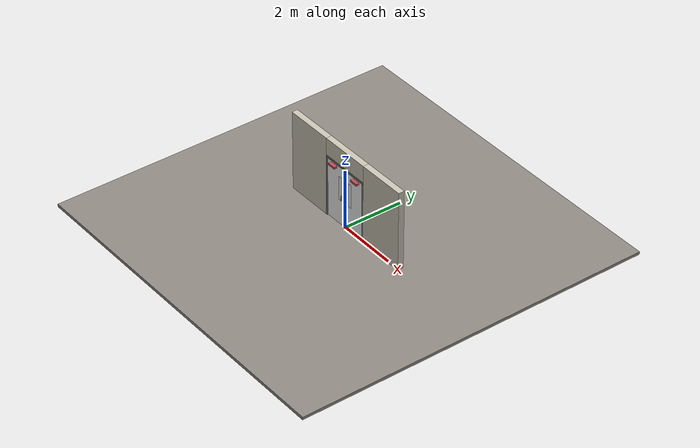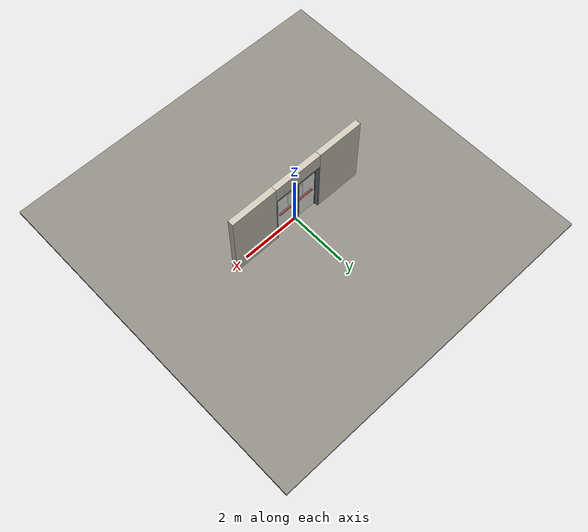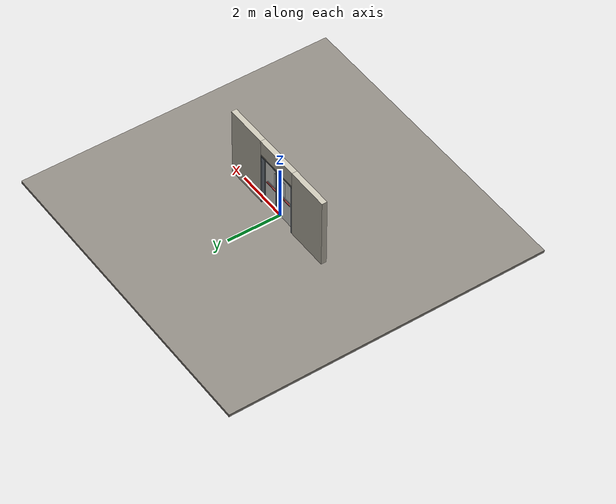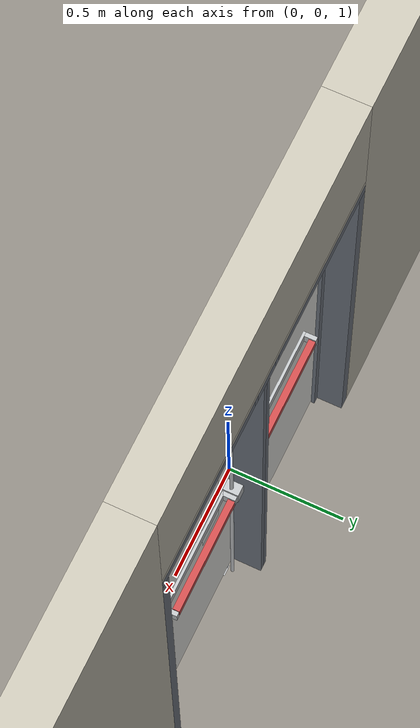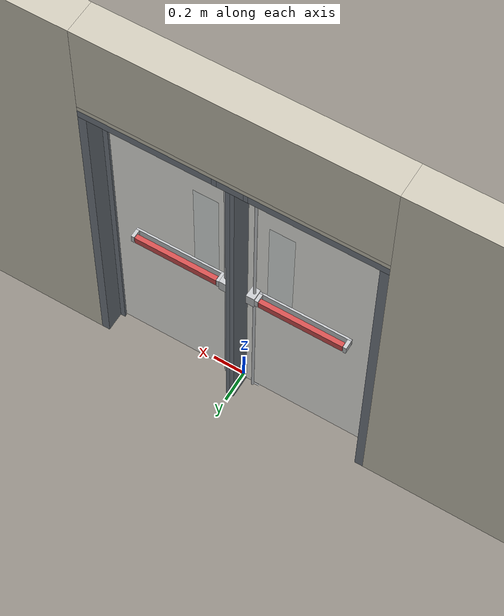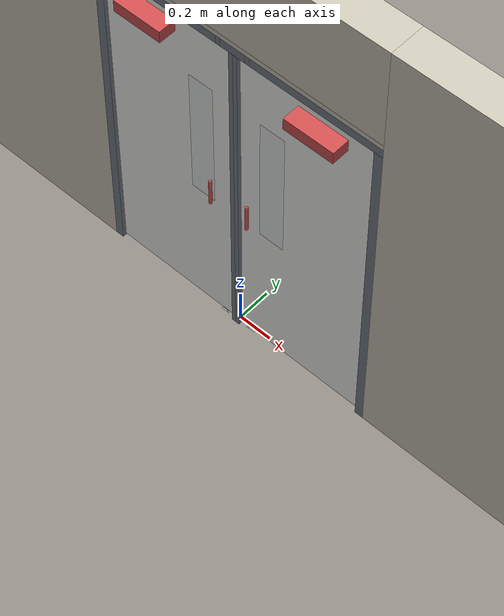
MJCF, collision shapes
<?xml version="1.0" ?>
<mujoco model="db0025_swing_double_full">
  <compiler angle="radian" meshdir="../../hardware" texturedir="../../textures" autolimits="true" inertiafromgeom="false"/>
  <option timestep="0.002" integrator="implicitfast" cone="elliptic" impratio="10" noslip_iterations="3">
    <flag multiccd="enable"/>
  </option>
  <size memory="16M"/>
  <default>
    <geom condim="4" solref="0.005 1" solimp="0.95 0.99 0.001"/>
    <joint solreflimit="0.005 1" solimplimit="0.95 0.99 0.001"/>
    <tendon solreflimit="0.005 1"/>
    <equality solref="0.002 1"/>
  </default>
  <visual>
    <headlight ambient="0.4 0.4 0.4" diffuse="0.7 0.7 0.7" specular="0.2 0.2 0.2"/>
    <quality shadowsize="4096"/>
    <map znear="0.01" zfar="60"/>
  </visual>
  <asset>
    <mesh name="closer_body_fdc4667657" file="closer_body_fdc4667657.obj"/>
    <mesh name="exit_sign_a6449bfa2c" file="exit_sign_a6449bfa2c.obj"/>
    <mesh name="hinge_e22b26c0c1" file="hinge_e22b26c0c1.obj"/>
    <mesh name="hinge_jamb_e1d088f8dc" file="hinge_jamb_e1d088f8dc.obj"/>
    <mesh name="pull_1e5d69a91a" file="pull_1e5d69a91a.obj"/>
    <mesh name="touchbar_pad_0373aa8b99" file="touchbar_pad_0373aa8b99.obj"/>
    <material name="mat_floor" rgba="0.55 0.53 0.5 1" specular="0.2" shininess="0.15" reflectance="0"/>
    <material name="mat_wall" rgba="0.78 0.76 0.7 1" specular="0.2" shininess="0.1" reflectance="0"/>
    <material name="mat_leaf_a" rgba="0.93 0.93 0.91 1" specular="0.23" shininess="0.58" reflectance="0.02"/>
    <material name="mat_glass" rgba="0.85 0.92 0.95 0.25" specular="0.2" shininess="0.95" reflectance="0.1"/>
    <material name="mat_hinge" rgba="0.65 0.66 0.68 1" specular="0.74" shininess="0.5" reflectance="0.36"/>
    <material name="mat_op_stainless" rgba="0.75 0.76 0.77 1" specular="0.8" shininess="0.65" reflectance="0.4"/>
    <material name="mat_bolt" rgba="0.75 0.76 0.77 1" specular="0.8" shininess="0.65" reflectance="0.4"/>
    <material name="mat_closer" rgba="0.22 0.17 0.13 1" specular="0.8" shininess="0.6" reflectance="0.4"/>
    <material name="mat_exit_sign" rgba="0.85 0.1 0.1 1" specular="0.2" shininess="0.6" reflectance="0"/>
    <material name="mat_sign_bracket" rgba="0.8 0.81 0.83 1" specular="0.8" shininess="0.6" reflectance="0.4"/>
    <material name="mat_leaf_b" rgba="0.93 0.93 0.91 1" specular="0.23" shininess="0.58" reflectance="0.02"/>
    <material name="mat_frame" rgba="0.45 0.48 0.52 1" specular="0.32" shininess="0.6" reflectance="0.08"/>
    <texture name="skybox" type="skybox" builtin="gradient" rgb1="0.6 0.7 0.85" rgb2="0.9 0.92 0.95" width="256" height="256"/>
  </asset>
  <worldbody>
    <light name="sun" pos="1.5 -2.5 4" dir="-0.3 0.5 -0.8" directional="true" diffuse="0.8 0.8 0.8" specular="0.3 0.3 0.3" castshadow="true"/>
    <light name="fill" pos="-1.5 2.5 3" dir="0.3 -0.5 -0.7" directional="true" diffuse="0.35 0.35 0.4" castshadow="false"/>
    <camera name="robot_view" pos="0 -2.484187 1.734312" xyaxes="1 0 0 0 0.26963 0.962964" fovy="52"/>
    <camera name="far_view" pos="0 2.600187 1.734312" xyaxes="-1 0 0 0 -0.26963 0.962964" fovy="52"/>
    <camera name="iso" pos="-1.932062 -2.077438 2.141063" xyaxes="0.741536 -0.670913 0 0.242917 0.268487 0.932151" fovy="46"/>
    <camera name="detail_handle" pos="0.062 -0.882 1.296" xyaxes="0.97561 0.219512 0 -0.070934 0.315262 0.94635" fovy="38"/>
    <geom name="floor" type="box" size="6 6 0.05" pos="0 0 -0.05" material="mat_floor" group="0" contype="1" conaffinity="1" friction="0.8 0.005 0.0001" density="2400"/>
    <geom name="wall_left" type="box" size="0.81625 0.1 1.35" pos="-1.68375 0.058 1.35" material="mat_wall" group="0" contype="1" conaffinity="1" friction="0.6 0.005 0.0001" density="800"/>
    <geom name="wall_right" type="box" size="0.81625 0.1 1.35" pos="1.68375 0.058 1.35" material="mat_wall" group="0" contype="1" conaffinity="1" friction="0.6 0.005 0.0001" density="800"/>
    <geom name="wall_header" type="box" size="0.8675 0.1 0.2875" pos="0 0.058 2.4125" material="mat_wall" group="0" contype="1" conaffinity="1" friction="0.6 0.005 0.0001" density="800"/>
    <geom name="hinge_0_jamb" type="mesh" mesh="hinge_jamb_e1d088f8dc" pos="-0.8145 -0.029 0.266" material="mat_hinge" group="1" contype="0" conaffinity="0" density="7850"/>
    <geom name="hinge_1_jamb" type="mesh" mesh="hinge_jamb_e1d088f8dc" pos="-0.8145 -0.029 1.0285" material="mat_hinge" group="1" contype="0" conaffinity="0" density="7850"/>
    <geom name="hinge_2_jamb" type="mesh" mesh="hinge_jamb_e1d088f8dc" pos="-0.8145 -0.029 1.861" material="mat_hinge" group="1" contype="0" conaffinity="0" density="7850"/>
    <geom name="leaf_a_bottom_strike_plate" type="box" size="0.0255 0.0255 0.00075" pos="-0.088 0 0.00075" material="mat_bolt" group="0" contype="1" conaffinity="1" friction="0.6 0.005 0.0001" density="7850"/>
    <geom name="leaf_a_bottom_strike_p" type="box" size="0.0215 0.004 0.00575" pos="-0.088 0.0145 0.00725" material="mat_bolt" group="0" contype="1" conaffinity="1" friction="0.6 0.005 0.0001" density="7850"/>
    <geom name="leaf_a_bottom_strike_n" type="box" size="0.0215 0.004 0.00575" pos="-0.088 -0.0145 0.00725" material="mat_bolt" group="0" contype="1" conaffinity="1" friction="0.6 0.005 0.0001" density="7850"/>
    <geom name="leaf_a_bottom_strike_e" type="box" size="0.004 0.0215 0.00575" pos="-0.0735 0 0.00725" material="mat_bolt" group="0" contype="1" conaffinity="1" friction="0.6 0.005 0.0001" density="7850"/>
    <geom name="exit_sign" type="mesh" mesh="exit_sign_a6449bfa2c" pos="0 0.15 2.345" material="mat_exit_sign" group="2" contype="0" conaffinity="0" density="500"/>
    <geom name="hinge_0_jamb_2" type="mesh" mesh="hinge_jamb_e1d088f8dc" pos="0.8145 -0.029 0.266" quat="0 0 1 0" material="mat_hinge" group="1" contype="0" conaffinity="0" density="7850"/>
    <geom name="hinge_1_jamb_2" type="mesh" mesh="hinge_jamb_e1d088f8dc" pos="0.8145 -0.029 1.0285" quat="0 0 1 0" material="mat_hinge" group="1" contype="0" conaffinity="0" density="7850"/>
    <geom name="hinge_2_jamb_2" type="mesh" mesh="hinge_jamb_e1d088f8dc" pos="0.8145 -0.029 1.861" quat="0 0 1 0" material="mat_hinge" group="1" contype="0" conaffinity="0" density="7850"/>
    <geom name="leaf_b_bottom_strike_plate" type="box" size="0.0255 0.0255 0.00075" pos="0.088 0 0.00075" material="mat_bolt" group="0" contype="1" conaffinity="1" friction="0.6 0.005 0.0001" density="7850"/>
    <geom name="leaf_b_bottom_strike_p" type="box" size="0.0215 0.004 0.00575" pos="0.088 0.0145 0.00725" material="mat_bolt" group="0" contype="1" conaffinity="1" friction="0.6 0.005 0.0001" density="7850"/>
    <geom name="leaf_b_bottom_strike_n" type="box" size="0.0215 0.004 0.00575" pos="0.088 -0.0145 0.00725" material="mat_bolt" group="0" contype="1" conaffinity="1" friction="0.6 0.005 0.0001" density="7850"/>
    <geom name="leaf_b_bottom_strike_e" type="box" size="0.004 0.0215 0.00575" pos="0.0735 0 0.00725" material="mat_bolt" group="0" contype="1" conaffinity="1" friction="0.6 0.005 0.0001" density="7850"/>
    <geom name="jamb_l" type="box" size="0.025 0.1 1.0225" pos="-0.8425 0.058 1.0225" material="mat_frame" group="0" contype="1" conaffinity="1" friction="0.6 0.005 0.0001" density="300"/>
    <geom name="jamb_r" type="box" size="0.025 0.1 1.0225" pos="0.8425 0.058 1.0225" material="mat_frame" group="0" contype="1" conaffinity="1" friction="0.6 0.005 0.0001" density="300"/>
    <geom name="jamb_head_pwall_-88_n" type="box" size="0.0135 0.0155 0.025" pos="-0.088 -0.0265 2.07" material="mat_frame" group="0" contype="1" conaffinity="1" friction="0.6 0.005 0.0001" density="300"/>
    <geom name="jamb_head_pwall_-88_p" type="box" size="0.0135 0.0735 0.025" pos="-0.088 0.0845 2.07" material="mat_frame" group="0" contype="1" conaffinity="1" friction="0.6 0.005 0.0001" density="300"/>
    <geom name="jamb_head_pback_-88" type="box" size="0.0135 0.011 0.0135" pos="-0.088 0 2.0815" material="mat_frame" group="0" contype="1" conaffinity="1" friction="0.6 0.005 0.0001" density="300"/>
    <geom name="jamb_head_pwall_88_n" type="box" size="0.0135 0.0155 0.025" pos="0.088 -0.0265 2.07" material="mat_frame" group="0" contype="1" conaffinity="1" friction="0.6 0.005 0.0001" density="300"/>
    <geom name="jamb_head_pwall_88_p" type="box" size="0.0135 0.0735 0.025" pos="0.088 0.0845 2.07" material="mat_frame" group="0" contype="1" conaffinity="1" friction="0.6 0.005 0.0001" density="300"/>
    <geom name="jamb_head_pback_88" type="box" size="0.0135 0.011 0.0135" pos="0.088 0 2.0815" material="mat_frame" group="0" contype="1" conaffinity="1" friction="0.6 0.005 0.0001" density="300"/>
    <geom name="jamb_head_0" type="box" size="0.383 0.1 0.025" pos="-0.4845 0.058 2.07" material="mat_frame" group="0" contype="1" conaffinity="1" friction="0.6 0.005 0.0001" density="300"/>
    <geom name="jamb_head_1" type="box" size="0.0745 0.1 0.025" pos="0 0.058 2.07" material="mat_frame" group="0" contype="1" conaffinity="1" friction="0.6 0.005 0.0001" density="300"/>
    <geom name="jamb_head_2" type="box" size="0.383 0.1 0.025" pos="0.4845 0.058 2.07" material="mat_frame" group="0" contype="1" conaffinity="1" friction="0.6 0.005 0.0001" density="300"/>
    <geom name="head_stud" type="box" size="0.8675 0.1 0.015" pos="0 0.058 2.11" material="mat_wall" group="0" contype="1" conaffinity="1" friction="0.6 0.005 0.0001" density="500"/>
    <geom name="stop_l" type="box" size="0.015 0.008 1.0225" pos="-0.8025 0.0305 1.0225" material="mat_frame" group="0" contype="1" conaffinity="1" friction="0.6 0.005 0.0001" density="300"/>
    <geom name="stop_r" type="box" size="0.015 0.008 1.0225" pos="0.8025 0.0305 1.0225" material="mat_frame" group="0" contype="1" conaffinity="1" friction="0.6 0.005 0.0001" density="300"/>
    <geom name="stop_head" type="box" size="0.8175 0.008 0.015" pos="0 0.0305 2.03" material="mat_frame" group="0" contype="1" conaffinity="1" friction="0.6 0.005 0.0001" density="300"/>
    <geom name="mullion_a_seg" type="box" size="0.0125 0.1 1.0225" pos="-0.0125 0.058 1.0225" material="mat_frame" group="0" contype="1" conaffinity="1" friction="0.6 0.005 0.0001" density="300"/>
    <geom name="mullion_b_seg" type="box" size="0.0125 0.1 1.0225" pos="0.0125 0.058 1.0225" material="mat_frame" group="0" contype="1" conaffinity="1" friction="0.6 0.005 0.0001" density="300"/>
    <site name="approach_point" pos="0 -1.5 0" quat="1 0 0 0" size="0.05" rgba="0.2 0.9 0.2 0.5" group="4"/>
    <site name="goal_point" pos="0 1.5 0" quat="1 0 0 0" size="0.05" rgba="0.2 0.9 0.2 0.5" group="4"/>
    <site name="door_plane_center" pos="0 0 1.0225" quat="1 0 0 0" size="0.02" rgba="0.2 0.9 0.2 0.5" group="4"/>
    <site name="approach_point_2" pos="0 -1.5 0" quat="1 0 0 0" size="0.05" rgba="0.2 0.9 0.2 0.5" group="4"/>
    <site name="goal_point_2" pos="0 1.5 0" quat="1 0 0 0" size="0.05" rgba="0.2 0.9 0.2 0.5" group="4"/>
    <site name="door_plane_center_2" pos="0 0 1.0225" quat="1 0 0 0" size="0.02" rgba="0.2 0.9 0.2 0.5" group="4"/>
    <site name="approach_point_3" pos="0 -1.5 0" quat="1 0 0 0" size="0.05" rgba="0.2 0.9 0.2 0.5" group="4"/>
    <site name="goal_point_3" pos="0 1.5 0" quat="1 0 0 0" size="0.05" rgba="0.2 0.9 0.2 0.5" group="4"/>
    <site name="door_plane_center_3" pos="0 0 1.0225" quat="1 0 0 0" size="0.02" rgba="0.2 0.9 0.2 0.5" group="4"/>
    <body name="leaf_a" pos="-0.8175 0 0">
      <inertial pos="0.391894 -0.014709 1.259749" mass="42.451314" quat="0.503295 -0.465048 -0.517983 -0.511974" diaginertia="2.026999831 17.085938039 19.015863877"/>
      <joint name="leaf_a_hinge" type="hinge" axis="0 0 -1" pos="0.003 -0.029 0" limited="true" range="0 1.919862" damping="12.160326" frictionloss="0.699991" stiffness="12.140339" springref="-1.719886" armature="0.02"/>
      <geom name="leaf_a_slab" type="box" size="0.39325 0.022 1.0125" pos="0.39625 0 1.0285" material="mat_leaf_a" group="0" contype="1" conaffinity="1" friction="0.4 0.005 0.0001" density="1"/>
      <geom name="leaf_a_glass_0" type="box" size="0.075 0.0228 0.405" pos="0.5945 0 1.2715" material="mat_glass" group="1" contype="0" conaffinity="0" density="1"/>
      <geom name="hinge_0" type="mesh" mesh="hinge_e22b26c0c1" pos="0.003 -0.029 0.266" material="mat_hinge" group="1" contype="0" conaffinity="0" density="7850"/>
      <geom name="hinge_1" type="mesh" mesh="hinge_e22b26c0c1" pos="0.003 -0.029 1.0285" material="mat_hinge" group="1" contype="0" conaffinity="0" density="7850"/>
      <geom name="hinge_2" type="mesh" mesh="hinge_e22b26c0c1" pos="0.003 -0.029 1.861" material="mat_hinge" group="1" contype="0" conaffinity="0" density="7850"/>
      <geom name="leaf_a_exit_device_rail" type="box" size="0.275613 0.006 0.025" pos="0.433887 0.028 1.016" material="mat_op_stainless" group="0" contype="1" conaffinity="1" friction="0.6 0.005 0.0001" density="3000"/>
      <geom name="leaf_a_exit_device_rail_end_n" type="box" size="0.01 0.0325 0.025" pos="0.168275 0.0545 1.016" material="mat_op_stainless" group="0" contype="1" conaffinity="1" friction="0.6 0.005 0.0001" density="3000"/>
      <geom name="leaf_a_exit_device_rail_end_p" type="box" size="0.01 0.0325 0.025" pos="0.6995 0.0545 1.016" material="mat_op_stainless" group="0" contype="1" conaffinity="1" friction="0.6 0.005 0.0001" density="3000"/>
      <geom name="leaf_a_exit_device_case" type="box" size="0.025 0.034125 0.0375" pos="0.7345 0.056125 1.016" material="mat_op_stainless" group="0" contype="1" conaffinity="1" friction="0.6 0.005 0.0001" density="3000"/>
      <geom name="leaf_a_exit_device_rod_top" type="cylinder" size="0.008 0.47875" pos="0.7295 0.052 1.53225" material="mat_op_stainless" group="1" contype="0" conaffinity="0" density="7850"/>
      <geom name="leaf_a_exit_device_rod_bot" type="cylinder" size="0.008 0.46625" pos="0.7295 0.052 0.51225" material="mat_op_stainless" group="1" contype="0" conaffinity="0" density="7850"/>
      <geom name="leaf_a_far_pull_n" type="mesh" mesh="pull_1e5d69a91a" pos="0.6995 -0.022 1.016" quat="0.707107 0.707107 0 0" material="mat_op_stainless" group="1" contype="0" conaffinity="0" density="3000"/>
      <geom name="leaf_a_far_pull_col_n" type="capsule" size="0.0095 0.08" pos="0.6995 -0.082 1.016" material="mat_op_stainless" group="3" contype="1" conaffinity="1" rgba="0.8 0.3 0.3 0.25" friction="0.7 0.01 0.0001" density="3000"/>
      <geom name="closer_body" type="mesh" mesh="closer_body_fdc4667657" pos="0.3 -0.022 1.945" quat="0.707107 0.707107 0 0" material="mat_closer" group="1" contype="0" conaffinity="0" density="2000"/>
      <geom name="closer_body_col" type="box" size="0.145 0.05 0.035" pos="0.3 -0.072 1.945" material="mat_closer" group="3" contype="1" conaffinity="1" rgba="0.8 0.3 0.3 0.25" friction="0.6 0.005 0.0001" density="2000"/>
      <site name="leaf_a_far_pull_grip_n" pos="0.6995 -0.082 1.016" quat="1 0 0 0" size="0.012" rgba="0.2 0.9 0.2 0.5" group="4"/>
      <site name="leaf_a_edge_mid" pos="0.7895 0 1.0125" quat="1 0 0 0" size="0.02" rgba="0.2 0.9 0.2 0.5" group="4"/>
      <body name="leaf_a_exit_device" pos="0.433887 0.022 1.016">
        <inertial pos="0 0.05 0" mass="4.092323" quat="0.707107 -0.707107 0 0" diaginertia="0.000997504 0.087354819 0.087738474"/>
        <joint name="leaf_a_exit_device_slide" type="slide" axis="0 -1 0" limited="true" range="0 0.016" damping="154.133079" frictionloss="0.5" stiffness="1400" springref="-0.015714" armature="0.15"/>
        <geom name="leaf_a_exit_device_pad" type="mesh" mesh="touchbar_pad_0373aa8b99" pos="0 0 0" quat="-0.707107 0.707107 0 0" material="mat_op_stainless" group="1" contype="0" conaffinity="0" density="3000"/>
        <geom name="leaf_a_exit_device_pad_col" type="box" size="0.252613 0.015 0.0225" pos="0 0.05 0" material="mat_op_stainless" group="3" contype="1" conaffinity="1" rgba="0.8 0.3 0.3 0.25" friction="0.8 0.01 0.0001" density="3000"/>
        <site name="leaf_a_exit_device_push" pos="0 0.065 0" quat="1 0 0 0" size="0.015" rgba="0.2 0.9 0.2 0.5" group="4"/>
      </body>
      <body name="leaf_a_top_latch" pos="0.7295 0 2.041">
        <inertial pos="0 0 -0.0155" mass="0.151026" quat="0.707107 0 0.707107 0" diaginertia="0.00000654 0.000053442 0.000053442"/>
        <joint name="leaf_a_top_latch_slide" type="slide" axis="0 0 -1" limited="true" range="0 0.019" damping="2" frictionloss="0.3" stiffness="800" springref="-0.01" armature="0.1"/>
        <geom name="leaf_a_top_latch_capsule" type="capsule" size="0.0095 0.025" pos="0 0 -0.0155" material="mat_bolt" group="0" contype="1" conaffinity="1" friction="0.2 0.005 0.0001" density="8500"/>
      </body>
      <body name="leaf_a_bottom_latch" pos="0.7295 0 0.03">
        <inertial pos="0 0 0.012" mass="0.167896" quat="0.707107 0 0.707107 0" diaginertia="0.000007301 0.000072388 0.000072388"/>
        <joint name="leaf_a_bottom_latch_slide" type="slide" axis="0 0 1" limited="true" range="0 0.026" damping="2" frictionloss="0.3" stiffness="800" springref="-0.01" armature="0.1"/>
        <geom name="leaf_a_bottom_latch_capsule" type="capsule" size="0.0095 0.0285" pos="0 0 0.012" material="mat_bolt" group="0" contype="1" conaffinity="1" friction="0.2 0.005 0.0001" density="8500"/>
      </body>
    </body>
    <body name="leaf_b" pos="0.8175 0 0">
      <inertial pos="-0.391894 -0.014709 1.259749" mass="42.451314" quat="0.511974 -0.517983 -0.465048 -0.503295" diaginertia="2.026999831 17.085938039 19.015863877"/>
      <joint name="leaf_b_hinge" type="hinge" axis="0 0 1" pos="-0.003 -0.029 0" limited="true" range="0 1.919862" damping="12.160326" frictionloss="0.699991" stiffness="12.140339" springref="-1.719886" armature="0.02"/>
      <geom name="leaf_b_slab" type="box" size="0.39325 0.022 1.0125" pos="-0.39625 0 1.0285" material="mat_leaf_b" group="0" contype="1" conaffinity="1" friction="0.4 0.005 0.0001" density="1"/>
      <geom name="leaf_b_glass_0" type="box" size="0.075 0.0228 0.405" pos="-0.5945 0 1.2715" material="mat_glass" group="1" contype="0" conaffinity="0" density="1"/>
      <geom name="hinge_0_2" type="mesh" mesh="hinge_e22b26c0c1" pos="-0.003 -0.029 0.266" quat="0 0 1 0" material="mat_hinge" group="1" contype="0" conaffinity="0" density="7850"/>
      <geom name="hinge_1_2" type="mesh" mesh="hinge_e22b26c0c1" pos="-0.003 -0.029 1.0285" quat="0 0 1 0" material="mat_hinge" group="1" contype="0" conaffinity="0" density="7850"/>
      <geom name="hinge_2_2" type="mesh" mesh="hinge_e22b26c0c1" pos="-0.003 -0.029 1.861" quat="0 0 1 0" material="mat_hinge" group="1" contype="0" conaffinity="0" density="7850"/>
      <geom name="leaf_b_exit_device_rail" type="box" size="0.275613 0.006 0.025" pos="-0.433887 0.028 1.016" material="mat_op_stainless" group="0" contype="1" conaffinity="1" friction="0.6 0.005 0.0001" density="3000"/>
      <geom name="leaf_b_exit_device_rail_end_n" type="box" size="0.01 0.0325 0.025" pos="-0.6995 0.0545 1.016" material="mat_op_stainless" group="0" contype="1" conaffinity="1" friction="0.6 0.005 0.0001" density="3000"/>
      <geom name="leaf_b_exit_device_rail_end_p" type="box" size="0.01 0.0325 0.025" pos="-0.168275 0.0545 1.016" material="mat_op_stainless" group="0" contype="1" conaffinity="1" friction="0.6 0.005 0.0001" density="3000"/>
      <geom name="leaf_b_exit_device_case" type="box" size="0.025 0.034125 0.0375" pos="-0.7345 0.056125 1.016" material="mat_op_stainless" group="0" contype="1" conaffinity="1" friction="0.6 0.005 0.0001" density="3000"/>
      <geom name="leaf_b_exit_device_rod_top" type="cylinder" size="0.008 0.47875" pos="-0.7295 0.052 1.53225" material="mat_op_stainless" group="1" contype="0" conaffinity="0" density="7850"/>
      <geom name="leaf_b_exit_device_rod_bot" type="cylinder" size="0.008 0.46625" pos="-0.7295 0.052 0.51225" material="mat_op_stainless" group="1" contype="0" conaffinity="0" density="7850"/>
      <geom name="leaf_b_far_pull_n" type="mesh" mesh="pull_1e5d69a91a" pos="-0.6995 -0.022 1.016" quat="0 0 -0.707107 0.707107" material="mat_op_stainless" group="1" contype="0" conaffinity="0" density="3000"/>
      <geom name="leaf_b_far_pull_col_n" type="capsule" size="0.0095 0.08" pos="-0.6995 -0.082 1.016" material="mat_op_stainless" group="3" contype="1" conaffinity="1" rgba="0.8 0.3 0.3 0.25" friction="0.7 0.01 0.0001" density="3000"/>
      <geom name="closer_body_2" type="mesh" mesh="closer_body_fdc4667657" pos="-0.3 -0.022 1.945" quat="0 0 -0.707107 0.707107" material="mat_closer" group="1" contype="0" conaffinity="0" density="2000"/>
      <geom name="closer_body_col_2" type="box" size="0.145 0.05 0.035" pos="-0.3 -0.072 1.945" material="mat_closer" group="3" contype="1" conaffinity="1" rgba="0.8 0.3 0.3 0.25" friction="0.6 0.005 0.0001" density="2000"/>
      <site name="leaf_b_far_pull_grip_n" pos="-0.6995 -0.082 1.016" quat="1 0 0 0" size="0.012" rgba="0.2 0.9 0.2 0.5" group="4"/>
      <site name="leaf_b_edge_mid" pos="-0.7895 0 1.0125" quat="1 0 0 0" size="0.02" rgba="0.2 0.9 0.2 0.5" group="4"/>
      <body name="leaf_b_exit_device" pos="-0.433887 0.022 1.016">
        <inertial pos="0 0.05 0" mass="4.092323" quat="0 0 0.707107 0.707107" diaginertia="0.000997504 0.087354819 0.087738474"/>
        <joint name="leaf_b_exit_device_slide" type="slide" axis="0 -1 0" limited="true" range="0 0.016" damping="154.133079" frictionloss="0.5" stiffness="1400" springref="-0.015714" armature="0.15"/>
        <geom name="leaf_b_exit_device_pad" type="mesh" mesh="touchbar_pad_0373aa8b99" pos="0 0 0" quat="0 0 0.707107 0.707107" material="mat_op_stainless" group="1" contype="0" conaffinity="0" density="3000"/>
        <geom name="leaf_b_exit_device_pad_col" type="box" size="0.252613 0.015 0.0225" pos="0 0.05 0" material="mat_op_stainless" group="3" contype="1" conaffinity="1" rgba="0.8 0.3 0.3 0.25" friction="0.8 0.01 0.0001" density="3000"/>
        <site name="leaf_b_exit_device_push" pos="0 0.065 0" quat="1 0 0 0" size="0.015" rgba="0.2 0.9 0.2 0.5" group="4"/>
      </body>
      <body name="leaf_b_top_latch" pos="-0.7295 0 2.041">
        <inertial pos="0 0 -0.0155" mass="0.151026" quat="0.707107 0 0.707107 0" diaginertia="0.00000654 0.000053442 0.000053442"/>
        <joint name="leaf_b_top_latch_slide" type="slide" axis="0 0 -1" limited="true" range="0 0.019" damping="2" frictionloss="0.3" stiffness="800" springref="-0.01" armature="0.1"/>
        <geom name="leaf_b_top_latch_capsule" type="capsule" size="0.0095 0.025" pos="0 0 -0.0155" material="mat_bolt" group="0" contype="1" conaffinity="1" friction="0.2 0.005 0.0001" density="8500"/>
      </body>
      <body name="leaf_b_bottom_latch" pos="-0.7295 0 0.03">
        <inertial pos="0 0 0.012" mass="0.167896" quat="0.707107 0 0.707107 0" diaginertia="0.000007301 0.000072388 0.000072388"/>
        <joint name="leaf_b_bottom_latch_slide" type="slide" axis="0 0 1" limited="true" range="0 0.026" damping="2" frictionloss="0.3" stiffness="800" springref="-0.01" armature="0.1"/>
        <geom name="leaf_b_bottom_latch_capsule" type="capsule" size="0.0095 0.0285" pos="0 0 0.012" material="mat_bolt" group="0" contype="1" conaffinity="1" friction="0.2 0.005 0.0001" density="8500"/>
      </body>
    </body>
  </worldbody>
  <tendon>
    <fixed name="leaf_a_top_latch_coupling" limited="true" range="0 10">
      <joint joint="leaf_a_top_latch_slide" coef="1"/>
      <joint joint="leaf_a_exit_device_slide" coef="-1.142857"/>
    </fixed>
    <fixed name="leaf_a_bottom_latch_coupling" limited="true" range="0 10">
      <joint joint="leaf_a_bottom_latch_slide" coef="1"/>
      <joint joint="leaf_a_exit_device_slide" coef="-1.56391"/>
    </fixed>
    <fixed name="leaf_b_top_latch_coupling" limited="true" range="0 10">
      <joint joint="leaf_b_top_latch_slide" coef="1"/>
      <joint joint="leaf_b_exit_device_slide" coef="-1.142857"/>
    </fixed>
    <fixed name="leaf_b_bottom_latch_coupling" limited="true" range="0 10">
      <joint joint="leaf_b_bottom_latch_slide" coef="1"/>
      <joint joint="leaf_b_exit_device_slide" coef="-1.56391"/>
    </fixed>
  </tendon>
  <sensor>
    <jointpos name="leaf_a_hinge_pos" joint="leaf_a_hinge"/>
    <jointvel name="leaf_a_hinge_vel" joint="leaf_a_hinge"/>
    <jointpos name="leaf_a_exit_device_slide_pos" joint="leaf_a_exit_device_slide"/>
    <jointvel name="leaf_a_exit_device_slide_vel" joint="leaf_a_exit_device_slide"/>
    <jointpos name="leaf_a_top_latch_slide_pos" joint="leaf_a_top_latch_slide"/>
    <jointvel name="leaf_a_top_latch_slide_vel" joint="leaf_a_top_latch_slide"/>
    <jointpos name="leaf_a_bottom_latch_slide_pos" joint="leaf_a_bottom_latch_slide"/>
    <jointvel name="leaf_a_bottom_latch_slide_vel" joint="leaf_a_bottom_latch_slide"/>
    <jointpos name="leaf_b_hinge_pos" joint="leaf_b_hinge"/>
    <jointvel name="leaf_b_hinge_vel" joint="leaf_b_hinge"/>
    <jointpos name="leaf_b_exit_device_slide_pos" joint="leaf_b_exit_device_slide"/>
    <jointvel name="leaf_b_exit_device_slide_vel" joint="leaf_b_exit_device_slide"/>
    <jointpos name="leaf_b_top_latch_slide_pos" joint="leaf_b_top_latch_slide"/>
    <jointvel name="leaf_b_top_latch_slide_vel" joint="leaf_b_top_latch_slide"/>
    <jointpos name="leaf_b_bottom_latch_slide_pos" joint="leaf_b_bottom_latch_slide"/>
    <jointvel name="leaf_b_bottom_latch_slide_vel" joint="leaf_b_bottom_latch_slide"/>
  </sensor>
</mujoco>
